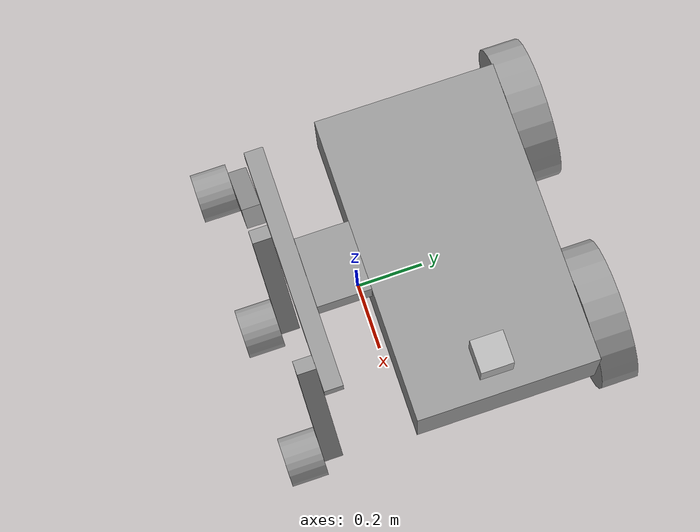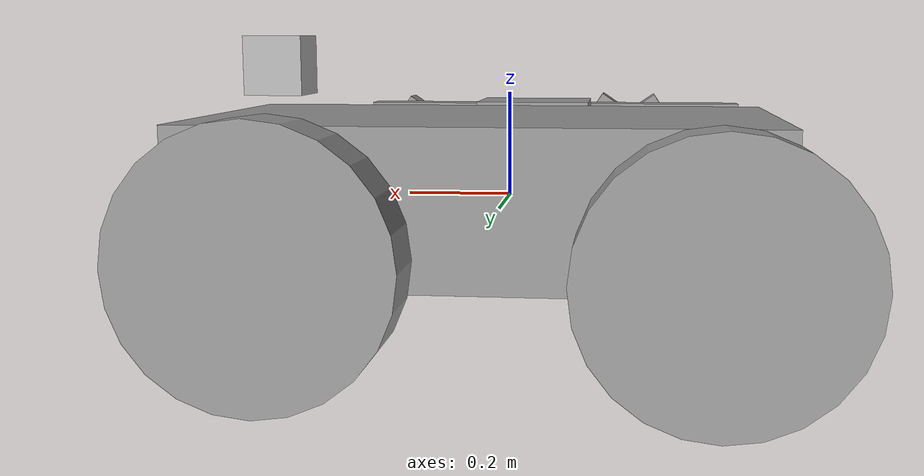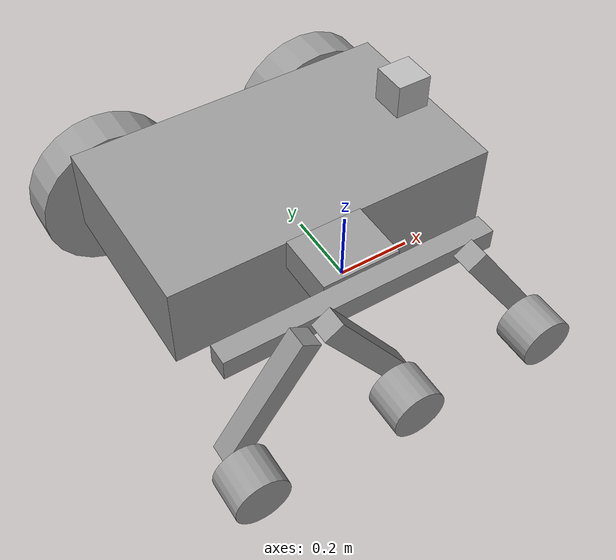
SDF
<?xml version='1.0'?>
<sdf version='1.7'>
  <model name='trailsorandom'>
    <link name='link_0'>
      <inertial>
        <mass>0.131577</mass>
        <inertia>
          <ixx>0.00410711</ixx>
          <ixy>0</ixy>
          <ixz>0</ixz>
          <iyy>0.0104004</iyy>
          <iyz>0</iyz>
          <izz>0.0131341</izz>
        </inertia>
        <pose>0 0 0 0 -0 0</pose>
      </inertial>
      <pose>-0.000594 0.304787 0.050569 0 -0 0</pose>
      <gravity>1</gravity>
      <self_collide>0</self_collide>
      <kinematic>0</kinematic>
      <enable_wind>0</enable_wind>
      <visual name='visual'>
        <pose>0 0 0 0 -0 0</pose>
        <geometry>
          <box>
            <size>0.941221 0.558521 0.250254</size>
          </box>
        </geometry>
        <material>
          <lighting>1</lighting>
          <script>
            <uri>file://media/materials/scripts/gazebo.material</uri>
            <name>Gazebo/Grey</name>
          </script>
          <shader type='pixel'>
            <normal_map>__default__</normal_map>
          </shader>
          <ambient>0.3 0.3 0.3 1</ambient>
          <diffuse>0.7 0.7 0.7 1</diffuse>
          <specular>0.01 0.01 0.01 1</specular>
          <emissive>0 0 0 1</emissive>
        </material>
        <transparency>0</transparency>
        <cast_shadows>1</cast_shadows>
      </visual>
      <collision name='collision'>
        <laser_retro>0</laser_retro>
        <max_contacts>10</max_contacts>
        <pose>0 0 0 0 -0 0</pose>
        <geometry>
          <box>
            <size>0.941221 0.558521 0.250254</size>
          </box>
        </geometry>
        <surface>
          <friction>
            <ode>
              <mu>1</mu>
              <mu2>1</mu2>
              <fdir1>0 0 0</fdir1>
              <slip1>0</slip1>
              <slip2>0</slip2>
            </ode>
            <torsional>
              <coefficient>1</coefficient>
              <patch_radius>0</patch_radius>
              <surface_radius>0</surface_radius>
              <use_patch_radius>1</use_patch_radius>
              <ode>
                <slip>0</slip>
              </ode>
            </torsional>
          </friction>
          <bounce>
            <restitution_coefficient>0</restitution_coefficient>
            <threshold>1e+06</threshold>
          </bounce>
          <contact>
            <collide_without_contact>0</collide_without_contact>
            <collide_without_contact_bitmask>1</collide_without_contact_bitmask>
            <collide_bitmask>1</collide_bitmask>
            <ode>
              <soft_cfm>0</soft_cfm>
              <soft_erp>0.2</soft_erp>
              <kp>1e+13</kp>
              <kd>1</kd>
              <max_vel>0.01</max_vel>
              <min_depth>0</min_depth>
            </ode>
            <bullet>
              <split_impulse>1</split_impulse>
              <split_impulse_penetration_threshold>-0.01</split_impulse_penetration_threshold>
              <soft_cfm>0</soft_cfm>
              <soft_erp>0.2</soft_erp>
              <kp>1e+13</kp>
              <kd>1</kd>
            </bullet>
          </contact>
        </surface>
      </collision>
    </link>
    <link name='link_1_clone_1'>
      <inertial>
        <mass>0.00256127</mass>
        <inertia>
          <ixx>6.34e-06</ixx>
          <ixy>0</ixy>
          <ixz>0</ixz>
          <iyy>6.34e-06</iyy>
          <iyz>0</iyz>
          <izz>7.3e-06</izz>
        </inertia>
        <pose>0 0 0 0 -0 0</pose>
      </inertial>
      <pose>0.408265 -0.314635 -0.1693 1.5708 -0 -1e-06</pose>
      <gravity>1</gravity>
      <self_collide>0</self_collide>
      <kinematic>0</kinematic>
      <enable_wind>0</enable_wind>
      <visual name='visual'>
        <pose>0 0 0 0 -0 0</pose>
        <geometry>
          <cylinder>
            <radius>0.0755005</radius>
            <length>0.112335</length>
          </cylinder>
        </geometry>
        <material>
          <lighting>1</lighting>
          <script>
            <uri>file://media/materials/scripts/gazebo.material</uri>
            <name>Gazebo/Grey</name>
          </script>
          <shader type='pixel'>
            <normal_map>__default__</normal_map>
          </shader>
          <ambient>0.3 0.3 0.3 1</ambient>
          <diffuse>0.7 0.7 0.7 1</diffuse>
          <specular>0.01 0.01 0.01 1</specular>
          <emissive>0 0 0 1</emissive>
        </material>
        <transparency>0</transparency>
        <cast_shadows>1</cast_shadows>
      </visual>
      <collision name='collision'>
        <laser_retro>0</laser_retro>
        <max_contacts>10</max_contacts>
        <pose>0 0 0 0 -0 0</pose>
        <geometry>
          <cylinder>
            <radius>0.0755</radius>
            <length>0.112335</length>
          </cylinder>
        </geometry>
        <surface>
          <friction>
            <ode>
              <mu>1</mu>
              <mu2>1</mu2>
              <fdir1>0 0 0</fdir1>
              <slip1>0</slip1>
              <slip2>0</slip2>
            </ode>
            <torsional>
              <coefficient>1</coefficient>
              <patch_radius>0</patch_radius>
              <surface_radius>0</surface_radius>
              <use_patch_radius>1</use_patch_radius>
              <ode>
                <slip>0</slip>
              </ode>
            </torsional>
          </friction>
          <bounce>
            <restitution_coefficient>0</restitution_coefficient>
            <threshold>1e+06</threshold>
          </bounce>
          <contact>
            <collide_without_contact>0</collide_without_contact>
            <collide_without_contact_bitmask>1</collide_without_contact_bitmask>
            <collide_bitmask>1</collide_bitmask>
            <ode>
              <soft_cfm>0</soft_cfm>
              <soft_erp>0.2</soft_erp>
              <kp>1e+13</kp>
              <kd>1</kd>
              <max_vel>0.01</max_vel>
              <min_depth>0</min_depth>
            </ode>
            <bullet>
              <split_impulse>1</split_impulse>
              <split_impulse_penetration_threshold>-0.01</split_impulse_penetration_threshold>
              <soft_cfm>0</soft_cfm>
              <soft_erp>0.2</soft_erp>
              <kp>1e+13</kp>
              <kd>1</kd>
            </bullet>
          </contact>
        </surface>
      </collision>
    </link>
    <link name='link_1_clone_2'>
      <inertial>
        <mass>0.00256127</mass>
        <inertia>
          <ixx>6.34e-06</ixx>
          <ixy>0</ixy>
          <ixz>0</ixz>
          <iyy>6.34e-06</iyy>
          <iyz>0</iyz>
          <izz>7.3e-06</izz>
        </inertia>
        <pose>0 0 0 0 -0 0</pose>
      </inertial>
      <pose>-0.006927 -0.31622 -0.168859 1.5708 -0 -5e-06</pose>
      <gravity>1</gravity>
      <self_collide>0</self_collide>
      <kinematic>0</kinematic>
      <enable_wind>0</enable_wind>
      <visual name='visual'>
        <pose>0 0 0 0 -0 0</pose>
        <geometry>
          <cylinder>
            <radius>0.0755005</radius>
            <length>0.112335</length>
          </cylinder>
        </geometry>
        <material>
          <lighting>1</lighting>
          <script>
            <uri>file://media/materials/scripts/gazebo.material</uri>
            <name>Gazebo/Grey</name>
          </script>
          <shader type='pixel'>
            <normal_map>__default__</normal_map>
          </shader>
          <ambient>0.3 0.3 0.3 1</ambient>
          <diffuse>0.7 0.7 0.7 1</diffuse>
          <specular>0.01 0.01 0.01 1</specular>
          <emissive>0 0 0 1</emissive>
        </material>
        <transparency>0</transparency>
        <cast_shadows>1</cast_shadows>
      </visual>
      <collision name='collision'>
        <laser_retro>0</laser_retro>
        <max_contacts>10</max_contacts>
        <pose>0 0 0 0 -0 0</pose>
        <geometry>
          <cylinder>
            <radius>0.0755</radius>
            <length>0.112335</length>
          </cylinder>
        </geometry>
        <surface>
          <friction>
            <ode>
              <mu>1</mu>
              <mu2>1</mu2>
              <fdir1>0 0 0</fdir1>
              <slip1>0</slip1>
              <slip2>0</slip2>
            </ode>
            <torsional>
              <coefficient>1</coefficient>
              <patch_radius>0</patch_radius>
              <surface_radius>0</surface_radius>
              <use_patch_radius>1</use_patch_radius>
              <ode>
                <slip>0</slip>
              </ode>
            </torsional>
          </friction>
          <bounce>
            <restitution_coefficient>0</restitution_coefficient>
            <threshold>1e+06</threshold>
          </bounce>
          <contact>
            <collide_without_contact>0</collide_without_contact>
            <collide_without_contact_bitmask>1</collide_without_contact_bitmask>
            <collide_bitmask>1</collide_bitmask>
            <ode>
              <soft_cfm>0</soft_cfm>
              <soft_erp>0.2</soft_erp>
              <kp>1e+13</kp>
              <kd>1</kd>
              <max_vel>0.01</max_vel>
              <min_depth>0</min_depth>
            </ode>
            <bullet>
              <split_impulse>1</split_impulse>
              <split_impulse_penetration_threshold>-0.01</split_impulse_penetration_threshold>
              <soft_cfm>0</soft_cfm>
              <soft_erp>0.2</soft_erp>
              <kp>1e+13</kp>
              <kd>1</kd>
            </bullet>
          </contact>
        </surface>
      </collision>
    </link>
    <link name='link_1_clone_3'>
      <inertial>
        <mass>0.00256127</mass>
        <inertia>
          <ixx>6.34e-06</ixx>
          <ixy>0</ixy>
          <ixz>0</ixz>
          <iyy>6.34e-06</iyy>
          <iyz>0</iyz>
          <izz>7.3e-06</izz>
        </inertia>
        <pose>0 0 0 0 -0 0</pose>
      </inertial>
      <pose>-0.455839 -0.316042 -0.170158 1.5708 -0 0</pose>
      <gravity>1</gravity>
      <self_collide>0</self_collide>
      <kinematic>0</kinematic>
      <enable_wind>0</enable_wind>
      <visual name='visual'>
        <pose>0 0 0 0 -0 0</pose>
        <geometry>
          <cylinder>
            <radius>0.0755005</radius>
            <length>0.112335</length>
          </cylinder>
        </geometry>
        <material>
          <lighting>1</lighting>
          <script>
            <uri>file://media/materials/scripts/gazebo.material</uri>
            <name>Gazebo/Grey</name>
          </script>
          <shader type='pixel'>
            <normal_map>__default__</normal_map>
          </shader>
          <ambient>0.3 0.3 0.3 1</ambient>
          <diffuse>0.7 0.7 0.7 1</diffuse>
          <specular>0.01 0.01 0.01 1</specular>
          <emissive>0 0 0 1</emissive>
        </material>
        <transparency>0</transparency>
        <cast_shadows>1</cast_shadows>
      </visual>
      <collision name='collision'>
        <laser_retro>0</laser_retro>
        <max_contacts>10</max_contacts>
        <pose>0 0 0 0 -0 0</pose>
        <geometry>
          <cylinder>
            <radius>0.0755</radius>
            <length>0.112335</length>
          </cylinder>
        </geometry>
        <surface>
          <friction>
            <ode>
              <mu>1</mu>
              <mu2>1</mu2>
              <fdir1>0 0 0</fdir1>
              <slip1>0</slip1>
              <slip2>0</slip2>
            </ode>
            <torsional>
              <coefficient>1</coefficient>
              <patch_radius>0</patch_radius>
              <surface_radius>0</surface_radius>
              <use_patch_radius>1</use_patch_radius>
              <ode>
                <slip>0</slip>
              </ode>
            </torsional>
          </friction>
          <bounce>
            <restitution_coefficient>0</restitution_coefficient>
            <threshold>1e+06</threshold>
          </bounce>
          <contact>
            <collide_without_contact>0</collide_without_contact>
            <collide_without_contact_bitmask>1</collide_without_contact_bitmask>
            <collide_bitmask>1</collide_bitmask>
            <ode>
              <soft_cfm>0</soft_cfm>
              <soft_erp>0.2</soft_erp>
              <kp>1e+13</kp>
              <kd>1</kd>
              <max_vel>0.01</max_vel>
              <min_depth>0</min_depth>
            </ode>
            <bullet>
              <split_impulse>1</split_impulse>
              <split_impulse_penetration_threshold>-0.01</split_impulse_penetration_threshold>
              <soft_cfm>0</soft_cfm>
              <soft_erp>0.2</soft_erp>
              <kp>1e+13</kp>
              <kd>1</kd>
            </bullet>
          </contact>
        </surface>
      </collision>
    </link>
    <link name='link_1_clone_3_clone'>
      <inertial>
        <mass>0.0210398</mass>
        <inertia>
          <ixx>0.000268396</ixx>
          <ixy>0</ixy>
          <ixz>0</ixz>
          <iyy>0.000268396</iyy>
          <iyz>0</iyz>
          <izz>0.000492541</izz>
        </inertia>
        <pose>0 0 0 0 -0 0</pose>
      </inertial>
      <pose>-0.363204 0.640215 -0.034329 1.5708 -0 1e-06</pose>
      <gravity>1</gravity>
      <self_collide>0</self_collide>
      <kinematic>0</kinematic>
      <enable_wind>0</enable_wind>
      <visual name='visual'>
        <pose>0 0 0 0 -0 0</pose>
        <geometry>
          <cylinder>
            <radius>0.216379</radius>
            <length>0.112335</length>
          </cylinder>
        </geometry>
        <material>
          <lighting>1</lighting>
          <script>
            <uri>file://media/materials/scripts/gazebo.material</uri>
            <name>Gazebo/Grey</name>
          </script>
          <shader type='pixel'>
            <normal_map>__default__</normal_map>
          </shader>
          <ambient>0.3 0.3 0.3 1</ambient>
          <diffuse>0.7 0.7 0.7 1</diffuse>
          <specular>0.01 0.01 0.01 1</specular>
          <emissive>0 0 0 1</emissive>
        </material>
        <transparency>0</transparency>
        <cast_shadows>1</cast_shadows>
      </visual>
      <collision name='collision'>
        <laser_retro>0</laser_retro>
        <max_contacts>10</max_contacts>
        <pose>0 0 0 0 -0 0</pose>
        <geometry>
          <cylinder>
            <radius>0.216379</radius>
            <length>0.112335</length>
          </cylinder>
        </geometry>
        <surface>
          <friction>
            <ode>
              <mu>1</mu>
              <mu2>1</mu2>
              <fdir1>0 0 0</fdir1>
              <slip1>0</slip1>
              <slip2>0</slip2>
            </ode>
            <torsional>
              <coefficient>1</coefficient>
              <patch_radius>0</patch_radius>
              <surface_radius>0</surface_radius>
              <use_patch_radius>1</use_patch_radius>
              <ode>
                <slip>0</slip>
              </ode>
            </torsional>
          </friction>
          <bounce>
            <restitution_coefficient>0</restitution_coefficient>
            <threshold>1e+06</threshold>
          </bounce>
          <contact>
            <collide_without_contact>0</collide_without_contact>
            <collide_without_contact_bitmask>1</collide_without_contact_bitmask>
            <collide_bitmask>1</collide_bitmask>
            <ode>
              <soft_cfm>0</soft_cfm>
              <soft_erp>0.2</soft_erp>
              <kp>1e+13</kp>
              <kd>1</kd>
              <max_vel>0.01</max_vel>
              <min_depth>0</min_depth>
            </ode>
            <bullet>
              <split_impulse>1</split_impulse>
              <split_impulse_penetration_threshold>-0.01</split_impulse_penetration_threshold>
              <soft_cfm>0</soft_cfm>
              <soft_erp>0.2</soft_erp>
              <kp>1e+13</kp>
              <kd>1</kd>
            </bullet>
          </contact>
        </surface>
      </collision>
    </link>
    <link name='link_1_clone_3_clone_clone'>
      <inertial>
        <mass>0.0210398</mass>
        <inertia>
          <ixx>0.000268396</ixx>
          <ixy>0</ixy>
          <ixz>0</ixz>
          <iyy>0.000268396</iyy>
          <iyz>0</iyz>
          <izz>0.000492541</izz>
        </inertia>
        <pose>0 0 0 0 -0 0</pose>
      </inertial>
      <pose>0.304397 0.640215 -0.022477 1.5708 -0 0</pose>
      <gravity>1</gravity>
      <self_collide>0</self_collide>
      <kinematic>0</kinematic>
      <enable_wind>0</enable_wind>
      <visual name='visual'>
        <pose>0 0 0 0 -0 0</pose>
        <geometry>
          <cylinder>
            <radius>0.216379</radius>
            <length>0.112335</length>
          </cylinder>
        </geometry>
        <material>
          <lighting>1</lighting>
          <script>
            <uri>file://media/materials/scripts/gazebo.material</uri>
            <name>Gazebo/Grey</name>
          </script>
          <shader type='pixel'>
            <normal_map>__default__</normal_map>
          </shader>
          <ambient>0.3 0.3 0.3 1</ambient>
          <diffuse>0.7 0.7 0.7 1</diffuse>
          <specular>0.01 0.01 0.01 1</specular>
          <emissive>0 0 0 1</emissive>
        </material>
        <transparency>0</transparency>
        <cast_shadows>1</cast_shadows>
      </visual>
      <collision name='collision'>
        <laser_retro>0</laser_retro>
        <max_contacts>10</max_contacts>
        <pose>0 0 0 0 -0 0</pose>
        <geometry>
          <cylinder>
            <radius>0.216379</radius>
            <length>0.112335</length>
          </cylinder>
        </geometry>
        <surface>
          <friction>
            <ode>
              <mu>1</mu>
              <mu2>1</mu2>
              <fdir1>0 0 0</fdir1>
              <slip1>0</slip1>
              <slip2>0</slip2>
            </ode>
            <torsional>
              <coefficient>1</coefficient>
              <patch_radius>0</patch_radius>
              <surface_radius>0</surface_radius>
              <use_patch_radius>1</use_patch_radius>
              <ode>
                <slip>0</slip>
              </ode>
            </torsional>
          </friction>
          <bounce>
            <restitution_coefficient>0</restitution_coefficient>
            <threshold>1e+06</threshold>
          </bounce>
          <contact>
            <collide_without_contact>0</collide_without_contact>
            <collide_without_contact_bitmask>1</collide_without_contact_bitmask>
            <collide_bitmask>1</collide_bitmask>
            <ode>
              <soft_cfm>0</soft_cfm>
              <soft_erp>0.2</soft_erp>
              <kp>1e+13</kp>
              <kd>1</kd>
              <max_vel>0.01</max_vel>
              <min_depth>0</min_depth>
            </ode>
            <bullet>
              <split_impulse>1</split_impulse>
              <split_impulse_penetration_threshold>-0.01</split_impulse_penetration_threshold>
              <soft_cfm>0</soft_cfm>
              <soft_erp>0.2</soft_erp>
              <kp>1e+13</kp>
              <kd>1</kd>
            </bullet>
          </contact>
        </surface>
      </collision>
    </link>
    <link name='link_2_clone'>
      <inertial>
        <mass>0.00330683</mass>
        <inertia>
          <ixx>1.00362e-05</ixx>
          <ixy>0</ixy>
          <ixz>0</ixz>
          <iyy>1.50404e-05</iyy>
          <iyz>0</iyz>
          <izz>2.04008e-05</izz>
        </inertia>
        <pose>0 0 0 0 -0 0</pose>
      </inertial>
      <pose>-0.044327 -0.058044 0.135755 0 -0 0</pose>
      <visual name='visual'>
        <pose>0 0 0 0 -0 0</pose>
        <geometry>
          <box>
            <size>0.214699 0.167141 0.092108</size>
          </box>
        </geometry>
        <material>
          <lighting>1</lighting>
          <script>
            <uri>file://media/materials/scripts/gazebo.material</uri>
            <name>Gazebo/Grey</name>
          </script>
          <shader type='pixel'/>
          <emissive>0 0 0 1</emissive>
        </material>
        <transparency>0</transparency>
        <cast_shadows>1</cast_shadows>
      </visual>
      <collision name='collision'>
        <laser_retro>0</laser_retro>
        <max_contacts>10</max_contacts>
        <pose>0 0 0 0 -0 0</pose>
        <geometry>
          <box>
            <size>0.214699 0.167141 0.092108</size>
          </box>
        </geometry>
        <surface>
          <friction>
            <ode>
              <mu>1</mu>
              <mu2>1</mu2>
              <fdir1>0 0 0</fdir1>
              <slip1>0</slip1>
              <slip2>0</slip2>
            </ode>
            <torsional>
              <coefficient>1</coefficient>
              <patch_radius>0</patch_radius>
              <surface_radius>0</surface_radius>
              <use_patch_radius>1</use_patch_radius>
              <ode>
                <slip>0</slip>
              </ode>
            </torsional>
          </friction>
          <bounce>
            <restitution_coefficient>0</restitution_coefficient>
            <threshold>1e+06</threshold>
          </bounce>
          <contact>
            <collide_without_contact>0</collide_without_contact>
            <collide_without_contact_bitmask>1</collide_without_contact_bitmask>
            <collide_bitmask>1</collide_bitmask>
            <ode>
              <soft_cfm>0</soft_cfm>
              <soft_erp>0.2</soft_erp>
              <kp>1e+13</kp>
              <kd>1</kd>
              <max_vel>0.01</max_vel>
              <min_depth>0</min_depth>
            </ode>
            <bullet>
              <split_impulse>1</split_impulse>
              <split_impulse_penetration_threshold>-0.01</split_impulse_penetration_threshold>
              <soft_cfm>0</soft_cfm>
              <soft_erp>0.2</soft_erp>
              <kp>1e+13</kp>
              <kd>1</kd>
            </bullet>
          </contact>
        </surface>
      </collision>
    </link>
    <link name='link_2_clone_clone'>
      <inertial>
        <mass>0.00260183</mass>
        <inertia>
          <ixx>1.50221e-06</ixx>
          <ixy>0</ixy>
          <ixz>0</ixz>
          <iyy>0.000123442</iyy>
          <iyz>0</iyz>
          <izz>0.00012342</izz>
        </inertia>
        <pose>0 0 0 0 -0 0</pose>
      </inertial>
      <pose>-0.073339 -0.170828 0.141225 0 -0 0</pose>
      <visual name='visual'>
        <pose>0 0 0 0 -0 0</pose>
        <geometry>
          <box>
            <size>0.752208 0.058426 0.059286</size>
          </box>
        </geometry>
        <material>
          <lighting>1</lighting>
          <script>
            <uri>file://media/materials/scripts/gazebo.material</uri>
            <name>Gazebo/Grey</name>
          </script>
          <shader type='pixel'/>
          <emissive>0 0 0 1</emissive>
        </material>
        <transparency>0</transparency>
        <cast_shadows>1</cast_shadows>
      </visual>
      <collision name='collision'>
        <laser_retro>0</laser_retro>
        <max_contacts>10</max_contacts>
        <pose>0 0 0 0 -0 0</pose>
        <geometry>
          <box>
            <size>0.752208 0.058426 0.059286</size>
          </box>
        </geometry>
        <surface>
          <friction>
            <ode>
              <mu>1</mu>
              <mu2>1</mu2>
              <fdir1>0 0 0</fdir1>
              <slip1>0</slip1>
              <slip2>0</slip2>
            </ode>
            <torsional>
              <coefficient>1</coefficient>
              <patch_radius>0</patch_radius>
              <surface_radius>0</surface_radius>
              <use_patch_radius>1</use_patch_radius>
              <ode>
                <slip>0</slip>
              </ode>
            </torsional>
          </friction>
          <bounce>
            <restitution_coefficient>0</restitution_coefficient>
            <threshold>1e+06</threshold>
          </bounce>
          <contact>
            <collide_without_contact>0</collide_without_contact>
            <collide_without_contact_bitmask>1</collide_without_contact_bitmask>
            <collide_bitmask>1</collide_bitmask>
            <ode>
              <soft_cfm>0</soft_cfm>
              <soft_erp>0.2</soft_erp>
              <kp>1e+13</kp>
              <kd>1</kd>
              <max_vel>0.01</max_vel>
              <min_depth>0</min_depth>
            </ode>
            <bullet>
              <split_impulse>1</split_impulse>
              <split_impulse_penetration_threshold>-0.01</split_impulse_penetration_threshold>
              <soft_cfm>0</soft_cfm>
              <soft_erp>0.2</soft_erp>
              <kp>1e+13</kp>
              <kd>1</kd>
            </bullet>
          </contact>
        </surface>
      </collision>
    </link>
    <link name='link_2_clone_clone_clone'>
      <inertial>
        <mass>0.00132416</mass>
        <inertia>
          <ixx>7.64529e-07</ixx>
          <ixy>0</ixy>
          <ixz>0</ixz>
          <iyy>1.65591e-05</iyy>
          <iyz>0</iyz>
          <izz>1.65479e-05</izz>
        </inertia>
        <pose>0 0 0 0 -0 0</pose>
      </inertial>
      <pose>-0.363189 -0.230661 0.010894 0 -0.981385 0</pose>
      <visual name='visual'>
        <pose>0 0 0 0 -0 0</pose>
        <geometry>
          <box>
            <size>0.382818 0.058426 0.059286</size>
          </box>
        </geometry>
        <material>
          <lighting>1</lighting>
          <script>
            <uri>file://media/materials/scripts/gazebo.material</uri>
            <name>Gazebo/Grey</name>
          </script>
          <shader type='pixel'/>
          <emissive>0 0 0 1</emissive>
        </material>
        <transparency>0</transparency>
        <cast_shadows>1</cast_shadows>
      </visual>
      <collision name='collision'>
        <laser_retro>0</laser_retro>
        <max_contacts>10</max_contacts>
        <pose>0 0 0 0 -0 0</pose>
        <geometry>
          <box>
            <size>0.382818 0.058426 0.059286</size>
          </box>
        </geometry>
        <surface>
          <friction>
            <ode>
              <mu>1</mu>
              <mu2>1</mu2>
              <fdir1>0 0 0</fdir1>
              <slip1>0</slip1>
              <slip2>0</slip2>
            </ode>
            <torsional>
              <coefficient>1</coefficient>
              <patch_radius>0</patch_radius>
              <surface_radius>0</surface_radius>
              <use_patch_radius>1</use_patch_radius>
              <ode>
                <slip>0</slip>
              </ode>
            </torsional>
          </friction>
          <bounce>
            <restitution_coefficient>0</restitution_coefficient>
            <threshold>1e+06</threshold>
          </bounce>
          <contact>
            <collide_without_contact>0</collide_without_contact>
            <collide_without_contact_bitmask>1</collide_without_contact_bitmask>
            <collide_bitmask>1</collide_bitmask>
            <ode>
              <soft_cfm>0</soft_cfm>
              <soft_erp>0.2</soft_erp>
              <kp>1e+13</kp>
              <kd>1</kd>
              <max_vel>0.01</max_vel>
              <min_depth>0</min_depth>
            </ode>
            <bullet>
              <split_impulse>1</split_impulse>
              <split_impulse_penetration_threshold>-0.01</split_impulse_penetration_threshold>
              <soft_cfm>0</soft_cfm>
              <soft_erp>0.2</soft_erp>
              <kp>1e+13</kp>
              <kd>1</kd>
            </bullet>
          </contact>
        </surface>
      </collision>
    </link>
    <link name='link_2_clone_clone_clone_clone'>
      <inertial>
        <mass>0.00132416</mass>
        <inertia>
          <ixx>7.64529e-07</ixx>
          <ixy>0</ixy>
          <ixz>0</ixz>
          <iyy>1.65591e-05</iyy>
          <iyz>0</iyz>
          <izz>1.65479e-05</izz>
        </inertia>
        <pose>0 0 0 0 -0 0</pose>
      </inertial>
      <pose>-0.091987 -0.230839 0.013452 3.14159 -0.977091 3.14159</pose>
      <visual name='visual'>
        <pose>0 0 0 0 -0 0</pose>
        <geometry>
          <box>
            <size>0.382818 0.058426 0.059286</size>
          </box>
        </geometry>
        <material>
          <lighting>1</lighting>
          <script>
            <uri>file://media/materials/scripts/gazebo.material</uri>
            <name>Gazebo/Grey</name>
          </script>
          <shader type='pixel'/>
          <emissive>0 0 0 1</emissive>
        </material>
        <transparency>0</transparency>
        <cast_shadows>1</cast_shadows>
      </visual>
      <collision name='collision'>
        <laser_retro>0</laser_retro>
        <max_contacts>10</max_contacts>
        <pose>0 0 0 0 -0 0</pose>
        <geometry>
          <box>
            <size>0.382818 0.058426 0.059286</size>
          </box>
        </geometry>
        <surface>
          <friction>
            <ode>
              <mu>1</mu>
              <mu2>1</mu2>
              <fdir1>0 0 0</fdir1>
              <slip1>0</slip1>
              <slip2>0</slip2>
            </ode>
            <torsional>
              <coefficient>1</coefficient>
              <patch_radius>0</patch_radius>
              <surface_radius>0</surface_radius>
              <use_patch_radius>1</use_patch_radius>
              <ode>
                <slip>0</slip>
              </ode>
            </torsional>
          </friction>
          <bounce>
            <restitution_coefficient>0</restitution_coefficient>
            <threshold>1e+06</threshold>
          </bounce>
          <contact>
            <collide_without_contact>0</collide_without_contact>
            <collide_without_contact_bitmask>1</collide_without_contact_bitmask>
            <collide_bitmask>1</collide_bitmask>
            <ode>
              <soft_cfm>0</soft_cfm>
              <soft_erp>0.2</soft_erp>
              <kp>1e+13</kp>
              <kd>1</kd>
              <max_vel>0.01</max_vel>
              <min_depth>0</min_depth>
            </ode>
            <bullet>
              <split_impulse>1</split_impulse>
              <split_impulse_penetration_threshold>-0.01</split_impulse_penetration_threshold>
              <soft_cfm>0</soft_cfm>
              <soft_erp>0.2</soft_erp>
              <kp>1e+13</kp>
              <kd>1</kd>
            </bullet>
          </contact>
        </surface>
      </collision>
    </link>
    <link name='link_2_clone_clone_clone_clone_clone'>
      <inertial>
        <mass>0.00132416</mass>
        <inertia>
          <ixx>7.64529e-07</ixx>
          <ixy>0</ixy>
          <ixz>0</ixz>
          <iyy>1.65591e-05</iyy>
          <iyz>0</iyz>
          <izz>1.65479e-05</izz>
        </inertia>
        <pose>0 0 0 0 -0 0</pose>
      </inertial>
      <pose>0.316181 -0.229254 0.005849 -3.14159 -0.977091 3.14159</pose>
      <visual name='visual'>
        <pose>0 0 0 0 -0 0</pose>
        <geometry>
          <box>
            <size>0.382818 0.058426 0.059286</size>
          </box>
        </geometry>
        <material>
          <lighting>1</lighting>
          <script>
            <uri>file://media/materials/scripts/gazebo.material</uri>
            <name>Gazebo/Grey</name>
          </script>
          <shader type='pixel'/>
          <emissive>0 0 0 1</emissive>
        </material>
        <transparency>0</transparency>
        <cast_shadows>1</cast_shadows>
      </visual>
      <collision name='collision'>
        <laser_retro>0</laser_retro>
        <max_contacts>10</max_contacts>
        <pose>0 0 0 0 -0 0</pose>
        <geometry>
          <box>
            <size>0.382818 0.058426 0.059286</size>
          </box>
        </geometry>
        <surface>
          <friction>
            <ode>
              <mu>1</mu>
              <mu2>1</mu2>
              <fdir1>0 0 0</fdir1>
              <slip1>0</slip1>
              <slip2>0</slip2>
            </ode>
            <torsional>
              <coefficient>1</coefficient>
              <patch_radius>0</patch_radius>
              <surface_radius>0</surface_radius>
              <use_patch_radius>1</use_patch_radius>
              <ode>
                <slip>0</slip>
              </ode>
            </torsional>
          </friction>
          <bounce>
            <restitution_coefficient>0</restitution_coefficient>
            <threshold>1e+06</threshold>
          </bounce>
          <contact>
            <collide_without_contact>0</collide_without_contact>
            <collide_without_contact_bitmask>1</collide_without_contact_bitmask>
            <collide_bitmask>1</collide_bitmask>
            <ode>
              <soft_cfm>0</soft_cfm>
              <soft_erp>0.2</soft_erp>
              <kp>1e+13</kp>
              <kd>1</kd>
              <max_vel>0.01</max_vel>
              <min_depth>0</min_depth>
            </ode>
            <bullet>
              <split_impulse>1</split_impulse>
              <split_impulse_penetration_threshold>-0.01</split_impulse_penetration_threshold>
              <soft_cfm>0</soft_cfm>
              <soft_erp>0.2</soft_erp>
              <kp>1e+13</kp>
              <kd>1</kd>
            </bullet>
          </contact>
        </surface>
      </collision>
    </link>
    <model name='depth_camera'>
      <link name='link'>
        <pose>0 0 0.05 0 -0 0</pose>
        <inertial>
          <mass>0.1</mass>
          <inertia>
            <ixx>0.000166667</ixx>
            <iyy>0.000166667</iyy>
            <izz>0.000166667</izz>
            <ixy>0</ixy>
            <ixz>0</ixz>
            <iyz>0</iyz>
          </inertia>
        </inertial>
        <collision name='collision'>
          <geometry>
            <box>
              <size>0.1 0.1 0.1</size>
            </box>
          </geometry>
        </collision>
        <visual name='visual'>
          <geometry>
            <box>
              <size>0.1 0.1 0.1</size>
            </box>
          </geometry>
        </visual>
        <sensor name='camera' type='depth'>
          <camera>
            <horizontal_fov>1.047</horizontal_fov>
            <image>
              <width>320</width>
              <height>240</height>
            </image>
            <clip>
              <near>0.1</near>
              <far>100</far>
            </clip>
          </camera>
          <always_on>1</always_on>
          <update_rate>30</update_rate>
          <visualize>1</visualize>
        </sensor>
      </link>
      <pose>0.370566 0.281305 0.207381 0 -0 0</pose>
    </model>
    <joint name='link_0_JOINT_12' type='revolute'>
      <parent>link_0</parent>
      <child>link_1_clone_3_clone_clone</child>
      <pose>0 0 0 0 -0 0</pose>
      <axis>
        <xyz>0 0 1</xyz>
        <limit>
          <lower>-1.79769e+308</lower>
          <upper>1.79769e+308</upper>
          <effort>-1</effort>
          <velocity>-1</velocity>
        </limit>
        <dynamics>
          <spring_reference>0</spring_reference>
          <spring_stiffness>0</spring_stiffness>
          <damping>0</damping>
          <friction>0</friction>
        </dynamics>
      </axis>
      <physics>
        <ode>
          <limit>
            <cfm>0</cfm>
            <erp>0.2</erp>
          </limit>
          <suspension>
            <cfm>0</cfm>
            <erp>0.2</erp>
          </suspension>
        </ode>
      </physics>
    </joint>
    <joint name='link_0_JOINT_13' type='revolute'>
      <parent>link_0</parent>
      <child>link_1_clone_3_clone</child>
      <pose>0 0 0 0 -0 0</pose>
      <axis>
        <xyz>0 0 1</xyz>
        <limit>
          <lower>-1.79769e+308</lower>
          <upper>1.79769e+308</upper>
          <effort>-1</effort>
          <velocity>-1</velocity>
        </limit>
        <dynamics>
          <spring_reference>0</spring_reference>
          <spring_stiffness>0</spring_stiffness>
          <damping>0</damping>
          <friction>0</friction>
        </dynamics>
      </axis>
      <physics>
        <ode>
          <limit>
            <cfm>0</cfm>
            <erp>0.2</erp>
          </limit>
          <suspension>
            <cfm>0</cfm>
            <erp>0.2</erp>
          </suspension>
        </ode>
      </physics>
    </joint>
    <joint name='link_0_JOINT_14' type='fixed'>
      <parent>link_0</parent>
      <child>depth_camera::link</child>
      <pose>0 0 0 0 -0 0</pose>
      <physics>
        <ode>
          <limit>
            <cfm>0</cfm>
            <erp>0.2</erp>
          </limit>
          <suspension>
            <cfm>0</cfm>
            <erp>0.2</erp>
          </suspension>
        </ode>
      </physics>
    </joint>
    <joint name='link_0_JOINT_4' type='revolute'>
      <parent>link_0</parent>
      <child>link_2_clone</child>
      <pose>0 0 0 0 -0 0</pose>
      <axis>
        <xyz>1 0 0</xyz>
        <limit>
          <lower>-1.79769e+308</lower>
          <upper>1.79769e+308</upper>
          <effort>-1</effort>
          <velocity>-1</velocity>
        </limit>
        <dynamics>
          <spring_reference>0</spring_reference>
          <spring_stiffness>0</spring_stiffness>
          <damping>0</damping>
        </dynamics>
      </axis>
      <physics>
        <ode>
          <limit>
            <cfm>0</cfm>
            <erp>0.2</erp>
          </limit>
          <suspension>
            <cfm>0</cfm>
            <erp>0.2</erp>
          </suspension>
        </ode>
      </physics>
    </joint>
    <joint name='link_2_clone_JOINT_5' type='revolute'>
      <parent>link_2_clone</parent>
      <child>link_2_clone_clone</child>
      <pose>0 0 0 0 -0 0</pose>
      <axis>
        <xyz>1 0 0</xyz>
        <limit>
          <lower>-1.79769e+308</lower>
          <upper>1.79769e+308</upper>
          <effort>-1</effort>
          <velocity>-1</velocity>
        </limit>
        <dynamics>
          <spring_reference>0</spring_reference>
          <spring_stiffness>0</spring_stiffness>
          <damping>0</damping>
        </dynamics>
      </axis>
      <physics>
        <ode>
          <limit>
            <cfm>0</cfm>
            <erp>0.2</erp>
          </limit>
          <suspension>
            <cfm>0</cfm>
            <erp>0.2</erp>
          </suspension>
        </ode>
      </physics>
    </joint>
    <joint name='link_2_clone_clone_JOINT_6' type='revolute'>
      <parent>link_2_clone_clone</parent>
      <child>link_2_clone_clone_clone</child>
      <pose>0 0 0 0 -0 0</pose>
      <axis>
        <xyz>0 1 0</xyz>
        <limit>
          <lower>-1.79769e+308</lower>
          <upper>1.79769e+308</upper>
          <effort>-1</effort>
          <velocity>-1</velocity>
        </limit>
        <dynamics>
          <spring_reference>0</spring_reference>
          <spring_stiffness>0</spring_stiffness>
          <damping>0</damping>
          <friction>0</friction>
        </dynamics>
      </axis>
      <physics>
        <ode>
          <limit>
            <cfm>0</cfm>
            <erp>0.2</erp>
          </limit>
          <suspension>
            <cfm>0</cfm>
            <erp>0.2</erp>
          </suspension>
        </ode>
      </physics>
    </joint>
    <joint name='link_2_clone_clone_JOINT_7' type='revolute'>
      <parent>link_2_clone_clone</parent>
      <child>link_2_clone_clone_clone_clone</child>
      <pose>0 0 0 0 -0 0</pose>
      <axis>
        <xyz>0 1 0</xyz>
        <limit>
          <lower>-1.79769e+308</lower>
          <upper>1.79769e+308</upper>
          <effort>-1</effort>
          <velocity>-1</velocity>
        </limit>
        <dynamics>
          <spring_reference>0</spring_reference>
          <spring_stiffness>0</spring_stiffness>
          <damping>0</damping>
          <friction>0</friction>
        </dynamics>
      </axis>
      <physics>
        <ode>
          <limit>
            <cfm>0</cfm>
            <erp>0.2</erp>
          </limit>
          <suspension>
            <cfm>0</cfm>
            <erp>0.2</erp>
          </suspension>
        </ode>
      </physics>
    </joint>
    <joint name='link_2_clone_clone_JOINT_8' type='revolute'>
      <parent>link_2_clone_clone</parent>
      <child>link_2_clone_clone_clone_clone_clone</child>
      <pose>0 0 0 0 -0 0</pose>
      <axis>
        <xyz>0 1 0</xyz>
        <limit>
          <lower>-1.79769e+308</lower>
          <upper>1.79769e+308</upper>
          <effort>-1</effort>
          <velocity>-1</velocity>
        </limit>
        <dynamics>
          <spring_reference>0</spring_reference>
          <spring_stiffness>0</spring_stiffness>
          <damping>0</damping>
          <friction>0</friction>
        </dynamics>
      </axis>
      <physics>
        <ode>
          <limit>
            <cfm>0</cfm>
            <erp>0.2</erp>
          </limit>
          <suspension>
            <cfm>0</cfm>
            <erp>0.2</erp>
          </suspension>
        </ode>
      </physics>
    </joint>
    <joint name='link_2_clone_clone_clone_JOINT_9' type='revolute'>
      <parent>link_2_clone_clone_clone</parent>
      <child>link_1_clone_3</child>
      <pose>0 0 0 0 -0 0</pose>
      <axis>
        <xyz>0 0 1</xyz>
        <limit>
          <lower>-1.79769e+308</lower>
          <upper>1.79769e+308</upper>
          <effort>-1</effort>
          <velocity>-1</velocity>
        </limit>
        <dynamics>
          <spring_reference>0</spring_reference>
          <spring_stiffness>0</spring_stiffness>
          <damping>0</damping>
          <friction>0</friction>
        </dynamics>
      </axis>
      <physics>
        <ode>
          <limit>
            <cfm>0</cfm>
            <erp>0.2</erp>
          </limit>
          <suspension>
            <cfm>0</cfm>
            <erp>0.2</erp>
          </suspension>
        </ode>
      </physics>
    </joint>
    <joint name='link_2_clone_clone_clone_clone_JOINT_10' type='revolute'>
      <parent>link_2_clone_clone_clone_clone</parent>
      <child>link_1_clone_2</child>
      <pose>0 0 0 0 -0 0</pose>
      <axis>
        <xyz>0 0 1</xyz>
        <limit>
          <lower>-1.79769e+308</lower>
          <upper>1.79769e+308</upper>
          <effort>-1</effort>
          <velocity>-1</velocity>
        </limit>
        <dynamics>
          <spring_reference>0</spring_reference>
          <spring_stiffness>0</spring_stiffness>
          <damping>0</damping>
          <friction>0</friction>
        </dynamics>
      </axis>
      <physics>
        <ode>
          <limit>
            <cfm>0</cfm>
            <erp>0.2</erp>
          </limit>
          <suspension>
            <cfm>0</cfm>
            <erp>0.2</erp>
          </suspension>
        </ode>
      </physics>
    </joint>
    <joint name='link_2_clone_clone_clone_clone_clone_JOINT_11' type='revolute'>
      <parent>link_2_clone_clone_clone_clone_clone</parent>
      <child>link_1_clone_1</child>
      <pose>0 0 0 0 -0 0</pose>
      <axis>
        <xyz>0 0 1</xyz>
        <limit>
          <lower>-1.79769e+308</lower>
          <upper>1.79769e+308</upper>
          <effort>-1</effort>
          <velocity>-1</velocity>
        </limit>
        <dynamics>
          <spring_reference>0</spring_reference>
          <spring_stiffness>0</spring_stiffness>
          <damping>0</damping>
          <friction>0</friction>
        </dynamics>
      </axis>
      <physics>
        <ode>
          <limit>
            <cfm>0</cfm>
            <erp>0.2</erp>
          </limit>
          <suspension>
            <cfm>0</cfm>
            <erp>0.2</erp>
          </suspension>
        </ode>
      </physics>
    </joint>
    <static>0</static>
    <allow_auto_disable>1</allow_auto_disable>
    <plugin name='follower' filename='libFollowerPlugin.so'/>
  </model>
</sdf>
